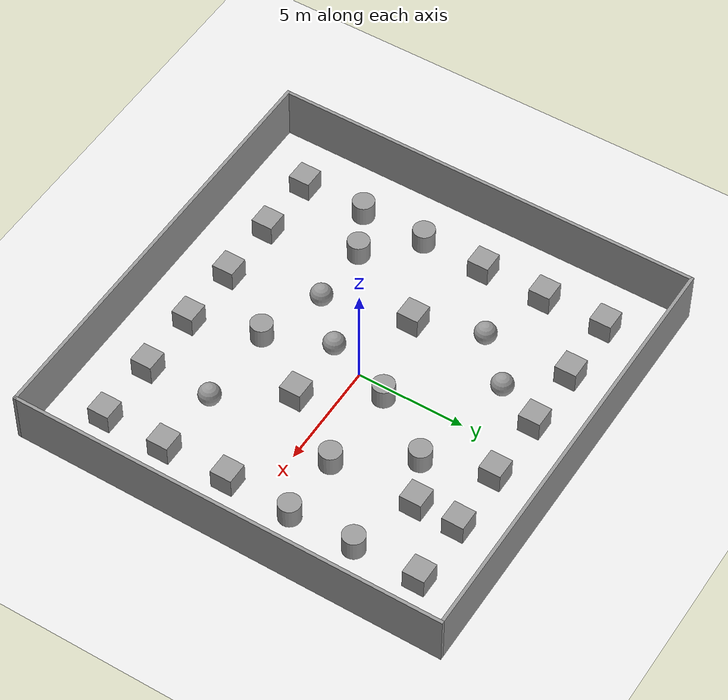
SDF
<sdf version="1.7">
 <world name="default">
  <light name="sun" type="directional">
   <pose>0 0 10 0 -0 0</pose>
   <diffuse>0.8 0.8 0.8 1</diffuse>
   <specular>0.2 0.2 0.2 1</specular>
   <attenuation>
    <range>1000</range>
    <constant>0.9</constant>
    <linear>0.01</linear>
    <quadratic>0.001</quadratic>
   </attenuation>
   <direction>-0.5 0.1 -0.9</direction>
   <spot><inner_angle>0</inner_angle><outer_angle>0</outer_angle><falloff>0</falloff></spot>
  </light>
  <model name="ground_plane">
   <static>1</static>
   <link name="link">
    <collision name="collision">
     <geometry><plane><normal>0 0 1</normal><size>100 100</size></plane></geometry>
     <surface>
      <contact><collide_bitmask>65535</collide_bitmask></contact>
      <friction><ode><mu>100</mu><mu2>50</mu2></ode></friction>
     </surface>
    </collision>
    <visual name="visual">
     <cast_shadows>0</cast_shadows>
     <geometry><plane><normal>0 0 1</normal><size>100 100</size></plane></geometry>
     <material>
      <script><uri>file://media/materials/scripts/gazebo.material</uri><name>Gazebo/White</name></script>
     </material>
    </visual>
   </link>
  </model>
  <gravity>0 0 -9.8</gravity>
  <magnetic_field>6e-06 2.3e-05 -4.2e-05</magnetic_field>
  <atmosphere type="adiabatic"/>
  <physics type="ode">
   <max_step_size>0.001</max_step_size>
   <real_time_factor>1</real_time_factor>
   <real_time_update_rate>1000</real_time_update_rate>
  </physics>
  <scene><ambient>0.4 0.4 0.4 1</ambient><background>0.7 0.7 0.7 1</background><shadows>1</shadows></scene>
  <spherical_coordinates>
   <surface_model>EARTH_WGS84</surface_model>
   <latitude_deg>0</latitude_deg>
   <longitude_deg>0</longitude_deg>
   <elevation>0</elevation>
   <heading_deg>0</heading_deg>
  </spherical_coordinates>
  <model name="unit_box">
   <pose>-7.49314 7.44334 0.5 0 -0 0</pose>
   <link name="link">
    <inertial>
     <mass>1</mass>
     <inertia>
      <ixx>0.166667</ixx>
      <ixy>0</ixy>
      <ixz>0</ixz>
      <iyy>0.166667</iyy>
      <iyz>0</iyz>
      <izz>0.166667</izz>
     </inertia>
    </inertial>
    <collision name="collision"><geometry><box><size>1 1 1</size></box></geometry></collision>
    <visual name="visual">
     <geometry><box><size>1 1 1</size></box></geometry>
     <material>
      <script><name>Gazebo/Grey</name><uri>file://media/materials/scripts/gazebo.material</uri></script>
     </material>
    </visual>
   </link>
   <static>1</static>
  </model>
  <model name="unit_box_0">
   <pose>-4.49969 7.47909 0.5 0 -0 0</pose>
   <link name="link">
    <inertial>
     <mass>1</mass>
     <inertia>
      <ixx>0.166667</ixx>
      <ixy>0</ixy>
      <ixz>0</ixz>
      <iyy>0.166667</iyy>
      <iyz>0</iyz>
      <izz>0.166667</izz>
     </inertia>
    </inertial>
    <collision name="collision"><geometry><box><size>1 1 1</size></box></geometry></collision>
    <visual name="visual">
     <geometry><box><size>1 1 1</size></box></geometry>
     <material>
      <script><name>Gazebo/Grey</name><uri>file://media/materials/scripts/gazebo.material</uri></script>
     </material>
    </visual>
   </link>
   <static>1</static>
  </model>
  <model name="unit_box_1">
   <pose>-1.52889 7.47982 0.5 0 -0 0</pose>
   <link name="link">
    <inertial>
     <mass>1</mass>
     <inertia>
      <ixx>0.166667</ixx>
      <ixy>0</ixy>
      <ixz>0</ixz>
      <iyy>0.166667</iyy>
      <iyz>0</iyz>
      <izz>0.166667</izz>
     </inertia>
    </inertial>
    <collision name="collision"><geometry><box><size>1 1 1</size></box></geometry></collision>
    <visual name="visual">
     <geometry><box><size>1 1 1</size></box></geometry>
     <material>
      <script><name>Gazebo/Grey</name><uri>file://media/materials/scripts/gazebo.material</uri></script>
     </material>
    </visual>
   </link>
   <static>1</static>
  </model>
  <model name="unit_box_2">
   <pose>1.56369 7.44983 0.5 0 -0 0</pose>
   <link name="link">
    <inertial>
     <mass>1</mass>
     <inertia>
      <ixx>0.166667</ixx>
      <ixy>0</ixy>
      <ixz>0</ixz>
      <iyy>0.166667</iyy>
      <iyz>0</iyz>
      <izz>0.166667</izz>
     </inertia>
    </inertial>
    <collision name="collision"><geometry><box><size>1 1 1</size></box></geometry></collision>
    <visual name="visual">
     <geometry><box><size>1 1 1</size></box></geometry>
     <material>
      <script><name>Gazebo/Grey</name><uri>file://media/materials/scripts/gazebo.material</uri></script>
     </material>
    </visual>
   </link>
   <static>1</static>
  </model>
  <model name="unit_box_3">
   <pose>4.5002 7.49708 0.5 0 -0 0</pose>
   <link name="link">
    <inertial>
     <mass>1</mass>
     <inertia>
      <ixx>0.166667</ixx>
      <ixy>0</ixy>
      <ixz>0</ixz>
      <iyy>0.166667</iyy>
      <iyz>0</iyz>
      <izz>0.166667</izz>
     </inertia>
    </inertial>
    <collision name="collision"><geometry><box><size>1 1 1</size></box></geometry></collision>
    <visual name="visual">
     <geometry><box><size>1 1 1</size></box></geometry>
     <material>
      <script><name>Gazebo/Grey</name><uri>file://media/materials/scripts/gazebo.material</uri></script>
     </material>
    </visual>
   </link>
   <static>1</static>
  </model>
  <model name="unit_box_4">
   <pose>7.48598 7.50921 0.5 0 -0 0</pose>
   <link name="link">
    <inertial>
     <mass>1</mass>
     <inertia>
      <ixx>0.166667</ixx>
      <ixy>0</ixy>
      <ixz>0</ixz>
      <iyy>0.166667</iyy>
      <iyz>0</iyz>
      <izz>0.166667</izz>
     </inertia>
    </inertial>
    <collision name="collision"><geometry><box><size>1 1 1</size></box></geometry></collision>
    <visual name="visual">
     <geometry><box><size>1 1 1</size></box></geometry>
     <material>
      <script><name>Gazebo/Grey</name><uri>file://media/materials/scripts/gazebo.material</uri></script>
     </material>
    </visual>
   </link>
   <static>1</static>
  </model>
  <model name="unit_box_5">
   <pose>-7.48272 4.51452 0.5 0 -0 0</pose>
   <link name="link">
    <inertial>
     <mass>1</mass>
     <inertia>
      <ixx>0.166667</ixx>
      <ixy>0</ixy>
      <ixz>0</ixz>
      <iyy>0.166667</iyy>
      <iyz>0</iyz>
      <izz>0.166667</izz>
     </inertia>
    </inertial>
    <collision name="collision"><geometry><box><size>1 1 1</size></box></geometry></collision>
    <visual name="visual">
     <geometry><box><size>1 1 1</size></box></geometry>
     <material>
      <script><name>Gazebo/Grey</name><uri>file://media/materials/scripts/gazebo.material</uri></script>
     </material>
    </visual>
   </link>
   <static>1</static>
  </model>
  <model name="unit_box_6">
   <pose>-7.48176 1.51176 0.5 0 -0 0</pose>
   <link name="link">
    <inertial>
     <mass>1</mass>
     <inertia>
      <ixx>0.166667</ixx>
      <ixy>0</ixy>
      <ixz>0</ixz>
      <iyy>0.166667</iyy>
      <iyz>0</iyz>
      <izz>0.166667</izz>
     </inertia>
    </inertial>
    <collision name="collision"><geometry><box><size>1 1 1</size></box></geometry></collision>
    <visual name="visual">
     <geometry><box><size>1 1 1</size></box></geometry>
     <material>
      <script><name>Gazebo/Grey</name><uri>file://media/materials/scripts/gazebo.material</uri></script>
     </material>
    </visual>
   </link>
   <static>1</static>
  </model>
  <model name="unit_cylinder">
   <pose>-7.50107 -1.45603 0.5 0 -0 0</pose>
   <link name="link">
    <inertial>
     <mass>1</mass>
     <inertia><ixx>0.145833</ixx><ixy>0</ixy><ixz>0</ixz><iyy>0.145833</iyy><iyz>0</iyz><izz>0.125</izz></inertia>
    </inertial>
    <collision name="collision">
     <geometry><cylinder><radius>0.5</radius><length>1</length></cylinder></geometry>
    </collision>
    <visual name="visual">
     <geometry><cylinder><radius>0.5</radius><length>1</length></cylinder></geometry>
     <material>
      <script><name>Gazebo/Grey</name><uri>file://media/materials/scripts/gazebo.material</uri></script>
     </material>
    </visual>
   </link>
   <static>1</static>
  </model>
  <model name="unit_cylinder_0">
   <pose>-7.49818 -4.51413 0.5 0 -0 0</pose>
   <link name="link">
    <inertial>
     <mass>1</mass>
     <inertia><ixx>0.145833</ixx><ixy>0</ixy><ixz>0</ixz><iyy>0.145833</iyy><iyz>0</iyz><izz>0.125</izz></inertia>
    </inertial>
    <collision name="collision">
     <geometry><cylinder><radius>0.5</radius><length>1</length></cylinder></geometry>
    </collision>
    <visual name="visual">
     <geometry><cylinder><radius>0.5</radius><length>1</length></cylinder></geometry>
     <material>
      <script><name>Gazebo/Grey</name><uri>file://media/materials/scripts/gazebo.material</uri></script>
     </material>
    </visual>
   </link>
   <static>1</static>
  </model>
  <model name="unit_box_7">
   <pose>-7.46673 -7.51068 0.5 0 -0 0</pose>
   <link name="link">
    <inertial>
     <mass>1</mass>
     <inertia>
      <ixx>0.166667</ixx>
      <ixy>0</ixy>
      <ixz>0</ixz>
      <iyy>0.166667</iyy>
      <iyz>0</iyz>
      <izz>0.166667</izz>
     </inertia>
    </inertial>
    <collision name="collision"><geometry><box><size>1 1 1</size></box></geometry></collision>
    <visual name="visual">
     <geometry><box><size>1 1 1</size></box></geometry>
     <material>
      <script><name>Gazebo/Grey</name><uri>file://media/materials/scripts/gazebo.material</uri></script>
     </material>
    </visual>
   </link>
   <static>1</static>
  </model>
  <model name="unit_cylinder_1">
   <pose>7.51509 4.49363 0.5 0 -0 0</pose>
   <link name="link">
    <inertial>
     <mass>1</mass>
     <inertia><ixx>0.145833</ixx><ixy>0</ixy><ixz>0</ixz><iyy>0.145833</iyy><iyz>0</iyz><izz>0.125</izz></inertia>
    </inertial>
    <collision name="collision">
     <geometry><cylinder><radius>0.5</radius><length>1</length></cylinder></geometry>
    </collision>
    <visual name="visual">
     <geometry><cylinder><radius>0.5</radius><length>1</length></cylinder></geometry>
     <material>
      <script><name>Gazebo/Grey</name><uri>file://media/materials/scripts/gazebo.material</uri></script>
     </material>
    </visual>
   </link>
   <static>1</static>
  </model>
  <model name="unit_cylinder_2">
   <pose>7.57103 1.50743 0.5 0 -0 0</pose>
   <link name="link">
    <inertial>
     <mass>1</mass>
     <inertia><ixx>0.145833</ixx><ixy>0</ixy><ixz>0</ixz><iyy>0.145833</iyy><iyz>0</iyz><izz>0.125</izz></inertia>
    </inertial>
    <collision name="collision">
     <geometry><cylinder><radius>0.5</radius><length>1</length></cylinder></geometry>
    </collision>
    <visual name="visual">
     <geometry><cylinder><radius>0.5</radius><length>1</length></cylinder></geometry>
     <material>
      <script><name>Gazebo/Grey</name><uri>file://media/materials/scripts/gazebo.material</uri></script>
     </material>
    </visual>
   </link>
   <static>1</static>
  </model>
  <model name="unit_box_8">
   <pose>7.49701 -1.5125 0.5 0 -0 0</pose>
   <link name="link">
    <inertial>
     <mass>1</mass>
     <inertia>
      <ixx>0.166667</ixx>
      <ixy>0</ixy>
      <ixz>0</ixz>
      <iyy>0.166667</iyy>
      <iyz>0</iyz>
      <izz>0.166667</izz>
     </inertia>
    </inertial>
    <collision name="collision"><geometry><box><size>1 1 1</size></box></geometry></collision>
    <visual name="visual">
     <geometry><box><size>1 1 1</size></box></geometry>
     <material>
      <script><name>Gazebo/Grey</name><uri>file://media/materials/scripts/gazebo.material</uri></script>
     </material>
    </visual>
   </link>
   <static>1</static>
  </model>
  <model name="unit_box_9">
   <pose>7.54247 -4.57557 0.5 0 -0 0</pose>
   <link name="link">
    <inertial>
     <mass>1</mass>
     <inertia>
      <ixx>0.166667</ixx>
      <ixy>0</ixy>
      <ixz>0</ixz>
      <iyy>0.166667</iyy>
      <iyz>0</iyz>
      <izz>0.166667</izz>
     </inertia>
    </inertial>
    <collision name="collision"><geometry><box><size>1 1 1</size></box></geometry></collision>
    <visual name="visual">
     <geometry><box><size>1 1 1</size></box></geometry>
     <material>
      <script><name>Gazebo/Grey</name><uri>file://media/materials/scripts/gazebo.material</uri></script>
     </material>
    </visual>
   </link>
   <static>1</static>
  </model>
  <model name="unit_box_10">
   <pose>7.51638 -7.51609 0.5 0 -0 0</pose>
   <link name="link">
    <inertial>
     <mass>1</mass>
     <inertia>
      <ixx>0.166667</ixx>
      <ixy>0</ixy>
      <ixz>0</ixz>
      <iyy>0.166667</iyy>
      <iyz>0</iyz>
      <izz>0.166667</izz>
     </inertia>
    </inertial>
    <collision name="collision"><geometry><box><size>1 1 1</size></box></geometry></collision>
    <visual name="visual">
     <geometry><box><size>1 1 1</size></box></geometry>
     <material>
      <script><name>Gazebo/Grey</name><uri>file://media/materials/scripts/gazebo.material</uri></script>
     </material>
    </visual>
   </link>
   <static>1</static>
  </model>
  <model name="unit_box_11">
   <pose>-4.50284 -7.48692 0.5 0 -0 0</pose>
   <link name="link">
    <inertial>
     <mass>1</mass>
     <inertia>
      <ixx>0.166667</ixx>
      <ixy>0</ixy>
      <ixz>0</ixz>
      <iyy>0.166667</iyy>
      <iyz>0</iyz>
      <izz>0.166667</izz>
     </inertia>
    </inertial>
    <collision name="collision"><geometry><box><size>1 1 1</size></box></geometry></collision>
    <visual name="visual">
     <geometry><box><size>1 1 1</size></box></geometry>
     <material>
      <script><name>Gazebo/Grey</name><uri>file://media/materials/scripts/gazebo.material</uri></script>
     </material>
    </visual>
   </link>
   <static>1</static>
  </model>
  <model name="unit_box_12">
   <pose>-1.48908 -7.48326 0.5 0 -0 0</pose>
   <link name="link">
    <inertial>
     <mass>1</mass>
     <inertia>
      <ixx>0.166667</ixx>
      <ixy>0</ixy>
      <ixz>0</ixz>
      <iyy>0.166667</iyy>
      <iyz>0</iyz>
      <izz>0.166667</izz>
     </inertia>
    </inertial>
    <collision name="collision"><geometry><box><size>1 1 1</size></box></geometry></collision>
    <visual name="visual">
     <geometry><box><size>1 1 1</size></box></geometry>
     <material>
      <script><name>Gazebo/Grey</name><uri>file://media/materials/scripts/gazebo.material</uri></script>
     </material>
    </visual>
   </link>
   <static>1</static>
  </model>
  <model name="unit_box_13">
   <pose>1.49219 -7.50781 0.5 0 -0 0</pose>
   <link name="link">
    <inertial>
     <mass>1</mass>
     <inertia>
      <ixx>0.166667</ixx>
      <ixy>0</ixy>
      <ixz>0</ixz>
      <iyy>0.166667</iyy>
      <iyz>0</iyz>
      <izz>0.166667</izz>
     </inertia>
    </inertial>
    <collision name="collision"><geometry><box><size>1 1 1</size></box></geometry></collision>
    <visual name="visual">
     <geometry><box><size>1 1 1</size></box></geometry>
     <material>
      <script><name>Gazebo/Grey</name><uri>file://media/materials/scripts/gazebo.material</uri></script>
     </material>
    </visual>
   </link>
   <static>1</static>
  </model>
  <model name="unit_box_14">
   <pose>4.50014 -7.50072 0.5 0 -0 0</pose>
   <link name="link">
    <inertial>
     <mass>1</mass>
     <inertia>
      <ixx>0.166667</ixx>
      <ixy>0</ixy>
      <ixz>0</ixz>
      <iyy>0.166667</iyy>
      <iyz>0</iyz>
      <izz>0.166667</izz>
     </inertia>
    </inertial>
    <collision name="collision"><geometry><box><size>1 1 1</size></box></geometry></collision>
    <visual name="visual">
     <geometry><box><size>1 1 1</size></box></geometry>
     <material>
      <script><name>Gazebo/Grey</name><uri>file://media/materials/scripts/gazebo.material</uri></script>
     </material>
    </visual>
   </link>
   <static>1</static>
  </model>
  <model name="unit_sphere">
   <pose>-4.37146 3.48214 0.5 0 -0 0</pose>
   <link name="link">
    <inertial>
     <mass>1</mass>
     <inertia><ixx>0.1</ixx><ixy>0</ixy><ixz>0</ixz><iyy>0.1</iyy><iyz>0</iyz><izz>0.1</izz></inertia>
    </inertial>
    <collision name="collision"><geometry><sphere><radius>0.5</radius></sphere></geometry></collision>
    <visual name="visual">
     <geometry><sphere><radius>0.5</radius></sphere></geometry>
     <material>
      <script><name>Gazebo/Grey</name><uri>file://media/materials/scripts/gazebo.material</uri></script>
     </material>
    </visual>
   </link>
   <static>1</static>
  </model>
  <model name="unit_sphere_0">
   <pose>-2.40343 5.45358 0.5 0 -0 0</pose>
   <link name="link">
    <inertial>
     <mass>1</mass>
     <inertia><ixx>0.1</ixx><ixy>0</ixy><ixz>0</ixz><iyy>0.1</iyy><iyz>0</iyz><izz>0.1</izz></inertia>
    </inertial>
    <collision name="collision"><geometry><sphere><radius>0.5</radius></sphere></geometry></collision>
    <visual name="visual">
     <geometry><sphere><radius>0.5</radius></sphere></geometry>
     <material>
      <script><name>Gazebo/Grey</name><uri>file://media/materials/scripts/gazebo.material</uri></script>
     </material>
    </visual>
   </link>
   <static>1</static>
  </model>
  <model name="unit_sphere_1">
   <pose>-2.46304 -3.43876 0.5 0 -0 0</pose>
   <link name="link">
    <inertial>
     <mass>1</mass>
     <inertia><ixx>0.1</ixx><ixy>0</ixy><ixz>0</ixz><iyy>0.1</iyy><iyz>0</iyz><izz>0.1</izz></inertia>
    </inertial>
    <collision name="collision"><geometry><sphere><radius>0.5</radius></sphere></geometry></collision>
    <visual name="visual">
     <geometry><sphere><radius>0.5</radius></sphere></geometry>
     <material>
      <script><name>Gazebo/Grey</name><uri>file://media/materials/scripts/gazebo.material</uri></script>
     </material>
    </visual>
   </link>
   <static>1</static>
  </model>
  <model name="unit_cylinder_3">
   <pose>0.525358 1.51444 0.5 0 -0 0</pose>
   <link name="link">
    <inertial>
     <mass>1</mass>
     <inertia><ixx>0.145833</ixx><ixy>0</ixy><ixz>0</ixz><iyy>0.145833</iyy><iyz>0</iyz><izz>0.125</izz></inertia>
    </inertial>
    <collision name="collision">
     <geometry><cylinder><radius>0.5</radius><length>1</length></cylinder></geometry>
    </collision>
    <visual name="visual">
     <geometry><cylinder><radius>0.5</radius><length>1</length></cylinder></geometry>
     <material>
      <script><name>Gazebo/Grey</name><uri>file://media/materials/scripts/gazebo.material</uri></script>
     </material>
    </visual>
   </link>
   <static>1</static>
  </model>
  <model name="unit_box_15">
   <pose>-3.46642 0.488057 0.5 0 -0 0</pose>
   <link name="link">
    <inertial>
     <mass>1</mass>
     <inertia>
      <ixx>0.166667</ixx>
      <ixy>0</ixy>
      <ixz>0</ixz>
      <iyy>0.166667</iyy>
      <iyz>0</iyz>
      <izz>0.166667</izz>
     </inertia>
    </inertial>
    <collision name="collision"><geometry><box><size>1 1 1</size></box></geometry></collision>
    <visual name="visual">
     <geometry><box><size>1 1 1</size></box></geometry>
     <material>
      <script><name>Gazebo/Grey</name><uri>file://media/materials/scripts/gazebo.material</uri></script>
     </material>
    </visual>
   </link>
   <static>1</static>
  </model>
  <model name="unit_box_16">
   <pose>2.44652 -1.5164 0.5 0 -0 0</pose>
   <link name="link">
    <inertial>
     <mass>1</mass>
     <inertia>
      <ixx>0.166667</ixx>
      <ixy>0</ixy>
      <ixz>0</ixz>
      <iyy>0.166667</iyy>
      <iyz>0</iyz>
      <izz>0.166667</izz>
     </inertia>
    </inertial>
    <collision name="collision"><geometry><box><size>1 1 1</size></box></geometry></collision>
    <visual name="visual">
     <geometry><box><size>1 1 1</size></box></geometry>
     <material>
      <script><name>Gazebo/Grey</name><uri>file://media/materials/scripts/gazebo.material</uri></script>
     </material>
    </visual>
   </link>
   <static>1</static>
  </model>
  <model name="unit_cylinder_4">
   <pose>2.50906 4.50245 0.5 0 -0 0</pose>
   <link name="link">
    <inertial>
     <mass>1</mass>
     <inertia><ixx>0.145833</ixx><ixy>0</ixy><ixz>0</ixz><iyy>0.145833</iyy><iyz>0</iyz><izz>0.125</izz></inertia>
    </inertial>
    <collision name="collision">
     <geometry><cylinder><radius>0.5</radius><length>1</length></cylinder></geometry>
    </collision>
    <visual name="visual">
     <geometry><cylinder><radius>0.5</radius><length>1</length></cylinder></geometry>
     <material>
      <script><name>Gazebo/Grey</name><uri>file://media/materials/scripts/gazebo.material</uri></script>
     </material>
    </visual>
   </link>
   <static>1</static>
  </model>
  <model name="unit_box_17">
   <pose>4.48049 5.52239 0.5 0 -0 0</pose>
   <link name="link">
    <inertial>
     <mass>1</mass>
     <inertia>
      <ixx>0.166667</ixx>
      <ixy>0</ixy>
      <ixz>0</ixz>
      <iyy>0.166667</iyy>
      <iyz>0</iyz>
      <izz>0.166667</izz>
     </inertia>
    </inertial>
    <collision name="collision"><geometry><box><size>1 1 1</size></box></geometry></collision>
    <visual name="visual">
     <geometry><box><size>1 1 1</size></box></geometry>
     <material>
      <script><name>Gazebo/Grey</name><uri>file://media/materials/scripts/gazebo.material</uri></script>
     </material>
    </visual>
   </link>
   <static>1</static>
  </model>
  <model name="unit_sphere_2">
   <pose>4.46082 -4.44533 0.5 0 -0 0</pose>
   <link name="link">
    <inertial>
     <mass>1</mass>
     <inertia><ixx>0.1</ixx><ixy>0</ixy><ixz>0</ixz><iyy>0.1</iyy><iyz>0</iyz><izz>0.1</izz></inertia>
    </inertial>
    <collision name="collision"><geometry><sphere><radius>0.5</radius></sphere></geometry></collision>
    <visual name="visual">
     <geometry><sphere><radius>0.5</radius></sphere></geometry>
     <material>
      <script><name>Gazebo/Grey</name><uri>file://media/materials/scripts/gazebo.material</uri></script>
     </material>
    </visual>
   </link>
   <static>1</static>
  </model>
  <model name="unit_cylinder_5">
   <pose>4.5292 1.48871 0.5 0 -0 0</pose>
   <link name="link">
    <inertial>
     <mass>1</mass>
     <inertia><ixx>0.145833</ixx><ixy>0</ixy><ixz>0</ixz><iyy>0.145833</iyy><iyz>0</iyz><izz>0.125</izz></inertia>
    </inertial>
    <collision name="collision">
     <geometry><cylinder><radius>0.5</radius><length>1</length></cylinder></geometry>
    </collision>
    <visual name="visual">
     <geometry><cylinder><radius>0.5</radius><length>1</length></cylinder></geometry>
     <material>
      <script><name>Gazebo/Grey</name><uri>file://media/materials/scripts/gazebo.material</uri></script>
     </material>
    </visual>
   </link>
   <static>1</static>
  </model>
  <model name="unit_cylinder_6">
   <pose>0.51555 -4.4913 0.5 0 -0 0</pose>
   <link name="link">
    <inertial>
     <mass>1</mass>
     <inertia><ixx>0.145833</ixx><ixy>0</ixy><ixz>0</ixz><iyy>0.145833</iyy><iyz>0</iyz><izz>0.125</izz></inertia>
    </inertial>
    <collision name="collision">
     <geometry><cylinder><radius>0.5</radius><length>1</length></cylinder></geometry>
    </collision>
    <visual name="visual">
     <geometry><cylinder><radius>0.5</radius><length>1</length></cylinder></geometry>
     <material>
      <script><name>Gazebo/Grey</name><uri>file://media/materials/scripts/gazebo.material</uri></script>
     </material>
    </visual>
   </link>
   <static>1</static>
  </model>
  <model name="unit_sphere_3">
   <pose>-0.52521 -1.55839 0.5 0 -0 0</pose>
   <link name="link">
    <inertial>
     <mass>1</mass>
     <inertia><ixx>0.1</ixx><ixy>0</ixy><ixz>0</ixz><iyy>0.1</iyy><iyz>0</iyz><izz>0.1</izz></inertia>
    </inertial>
    <collision name="collision"><geometry><sphere><radius>0.5</radius></sphere></geometry></collision>
    <visual name="visual">
     <geometry><sphere><radius>0.5</radius></sphere></geometry>
     <material>
      <script><name>Gazebo/Grey</name><uri>file://media/materials/scripts/gazebo.material</uri></script>
     </material>
    </visual>
   </link>
   <static>1</static>
  </model>
  <model name="unit_cylinder_7">
   <pose>-5.47318 -3.48832 0.5 0 -0 0</pose>
   <link name="link">
    <inertial>
     <mass>1</mass>
     <inertia><ixx>0.145833</ixx><ixy>0</ixy><ixz>0</ixz><iyy>0.145833</iyy><iyz>0</iyz><izz>0.125</izz></inertia>
    </inertial>
    <collision name="collision">
     <geometry><cylinder><radius>0.5</radius><length>1</length></cylinder></geometry>
    </collision>
    <visual name="visual">
     <geometry><cylinder><radius>0.5</radius><length>1</length></cylinder></geometry>
     <material>
      <script><name>Gazebo/Grey</name><uri>file://media/materials/scripts/gazebo.material</uri></script>
     </material>
    </visual>
   </link>
   <static>1</static>
  </model>
  <model name="20*20_walls">
   <link name="Wall_0">
    <collision name="Wall_0_Collision">
     <geometry><box><size>20.15 0.15 2.5</size></box></geometry>
     <pose>0 0 1.25 0 -0 0</pose>
    </collision>
    <visual name="Wall_0_Visual">
     <pose>0 0 1.25 0 -0 0</pose>
     <geometry><box><size>20.15 0.15 2.5</size></box></geometry>
     <material>
      <script><uri>file://media/materials/scripts/gazebo.material</uri><name>Gazebo/Grey</name></script>
      <ambient>1 1 1 1</ambient>
     </material>
     <meta><layer>0</layer></meta>
    </visual>
    <pose>10 0 0 0 -0 -1.5708</pose>
   </link>
   <link name="Wall_2">
    <collision name="Wall_2_Collision">
     <geometry><box><size>20.15 0.15 2.5</size></box></geometry>
     <pose>0 0 1.25 0 -0 0</pose>
    </collision>
    <visual name="Wall_2_Visual">
     <pose>0 0 1.25 0 -0 0</pose>
     <geometry><box><size>20.15 0.15 2.5</size></box></geometry>
     <material>
      <script><uri>file://media/materials/scripts/gazebo.material</uri><name>Gazebo/Grey</name></script>
      <ambient>1 1 1 1</ambient>
     </material>
     <meta><layer>0</layer></meta>
    </visual>
    <pose>0 10 0 0 -0 3.14159</pose>
   </link>
   <link name="Wall_4">
    <collision name="Wall_4_Collision">
     <geometry><box><size>20.15 0.15 2.5</size></box></geometry>
     <pose>0 0 1.25 0 -0 0</pose>
    </collision>
    <visual name="Wall_4_Visual">
     <pose>0 0 1.25 0 -0 0</pose>
     <geometry><box><size>20.15 0.15 2.5</size></box></geometry>
     <material>
      <script><uri>file://media/materials/scripts/gazebo.material</uri><name>Gazebo/Grey</name></script>
      <ambient>1 1 1 1</ambient>
     </material>
     <meta><layer>0</layer></meta>
    </visual>
    <pose>-10 0 0 0 -0 -1.5708</pose>
   </link>
   <link name="Wall_6">
    <collision name="Wall_6_Collision">
     <geometry><box><size>20.15 0.15 2.5</size></box></geometry>
     <pose>0 0 1.25 0 -0 0</pose>
    </collision>
    <visual name="Wall_6_Visual">
     <pose>0 0 1.25 0 -0 0</pose>
     <geometry><box><size>20.15 0.15 2.5</size></box></geometry>
     <material>
      <script><uri>file://media/materials/scripts/gazebo.material</uri><name>Gazebo/Grey</name></script>
      <ambient>1 1 1 1</ambient>
     </material>
     <meta><layer>0</layer></meta>
    </visual>
    <pose>0 -10 0 0 -0 0</pose>
   </link>
   <static>1</static>
  </model>
 </world>
</sdf>
